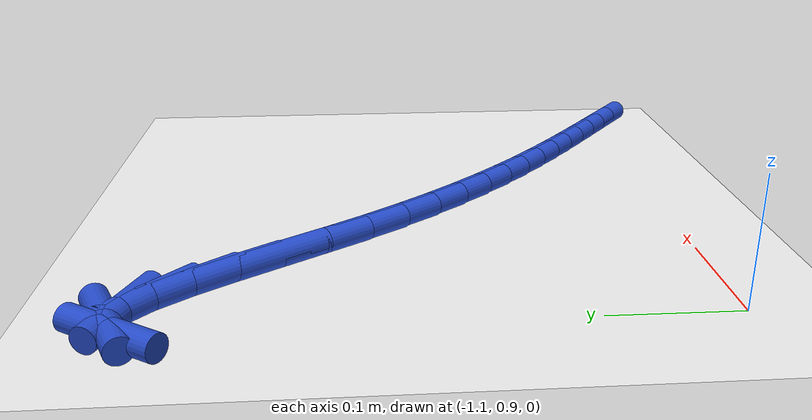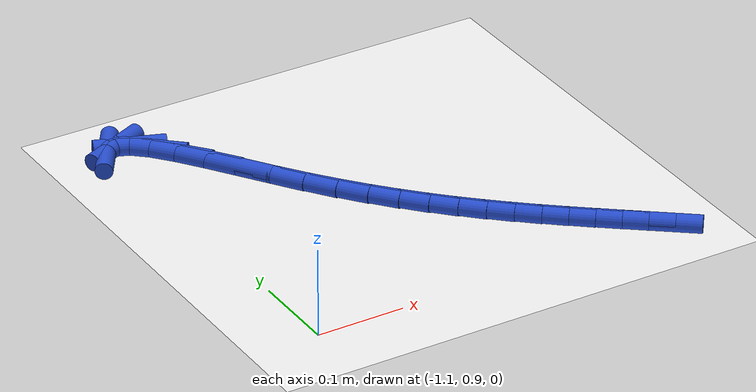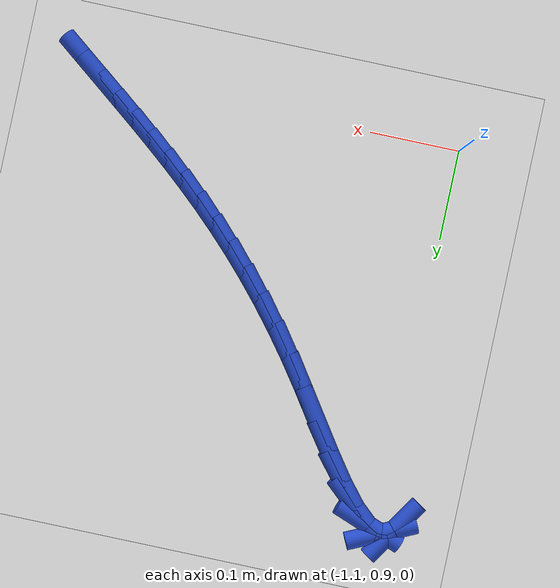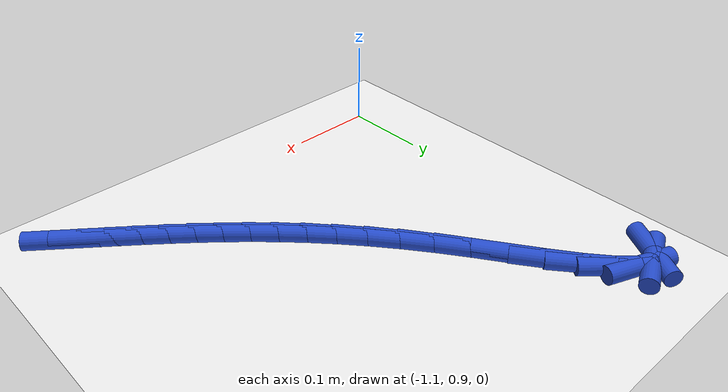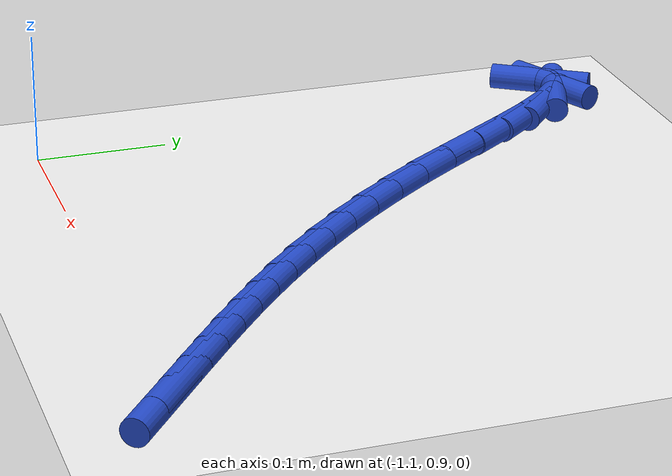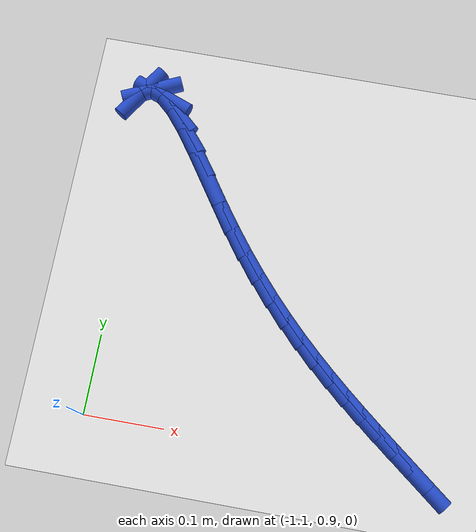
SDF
<sdf version="1.6">
 <world name="default">
  <model name="ground_plane">
   <static>1</static>
   <link name="link">
    <collision name="collision">
     <geometry><plane><normal>0 0 1</normal><size>100 100</size></plane></geometry>
     <surface><friction><ode><mu>100</mu><mu2>50</mu2></ode></friction></surface>
    </collision>
    <visual name="visual">
     <cast_shadows>0</cast_shadows>
     <geometry><plane><normal>0 0 1</normal><size>100 100</size></plane></geometry>
     <material>
      <script><uri>file://media/materials/scripts/gazebo.material</uri><name>Gazebo/WhiteGlow</name></script>
     </material>
    </visual>
   </link>
  </model>
  <model name="line">
   <link name="link_39">
    <pose>-0.6837948518364323 0.8922394192829913 0.01 0 1.57 -0.6608908706929832</pose>
    <collision name="collision">
     <geometry><cylinder><radius>0.01</radius><length>0.08</length></cylinder></geometry>
    </collision>
    <visual name="visual">
     <material>
      <script><name>Gazebo/Blue</name><uri>file://media/materials/scripts/gazebo.material</uri></script>
     </material>
     <geometry><cylinder><radius>0.01</radius><length>0.08</length></cylinder></geometry>
    </visual>
   </link>
   <link name="link_40">
    <pose>-0.7062137398512681 0.9096708530028464 0.01 0 1.57 -0.6608479817907046</pose>
    <collision name="collision">
     <geometry><cylinder><radius>0.01</radius><length>0.08</length></cylinder></geometry>
    </collision>
    <visual name="visual">
     <material>
      <script><name>Gazebo/Blue</name><uri>file://media/materials/scripts/gazebo.material</uri></script>
     </material>
     <geometry><cylinder><radius>0.01</radius><length>0.08</length></cylinder></geometry>
    </visual>
   </link>
   <link name="link_41">
    <pose>-0.7283552892869082 0.9268851230399509 0.01 0 1.57 -0.6657162424116385</pose>
    <collision name="collision">
     <geometry><cylinder><radius>0.01</radius><length>0.08</length></cylinder></geometry>
    </collision>
    <visual name="visual">
     <material>
      <script><name>Gazebo/Blue</name><uri>file://media/materials/scripts/gazebo.material</uri></script>
     </material>
     <geometry><cylinder><radius>0.01</radius><length>0.08</length></cylinder></geometry>
    </visual>
   </link>
   <link name="link_42">
    <pose>-0.7502576412680043 0.9440851536448641 0.01 0 1.57 -0.675518171484937</pose>
    <collision name="collision">
     <geometry><cylinder><radius>0.01</radius><length>0.08</length></cylinder></geometry>
    </collision>
    <visual name="visual">
     <material>
      <script><name>Gazebo/Blue</name><uri>file://media/materials/scripts/gazebo.material</uri></script>
     </material>
     <geometry><cylinder><radius>0.01</radius><length>0.08</length></cylinder></geometry>
    </visual>
   </link>
   <link name="link_43">
    <pose>-0.7719589369192088 0.9614738690681471 0.01 0 1.57 -0.690108288395644</pose>
    <collision name="collision">
     <geometry><cylinder><radius>0.01</radius><length>0.08</length></cylinder></geometry>
    </collision>
    <visual name="visual">
     <material>
      <script><name>Gazebo/Blue</name><uri>file://media/materials/scripts/gazebo.material</uri></script>
     </material>
     <geometry><cylinder><radius>0.01</radius><length>0.08</length></cylinder></geometry>
    </visual>
   </link>
   <link name="link_44">
    <pose>-0.793497317365173 0.9792541935603594 0.01 0 1.57 -0.7091735315733255</pose>
    <collision name="collision">
     <geometry><cylinder><radius>0.01</radius><length>0.08</length></cylinder></geometry>
    </collision>
    <visual name="visual">
     <material>
      <script><name>Gazebo/Blue</name><uri>file://media/materials/scripts/gazebo.material</uri></script>
     </material>
     <geometry><cylinder><radius>0.01</radius><length>0.08</length></cylinder></geometry>
    </visual>
   </link>
   <link name="link_45">
    <pose>-0.8149109237305493 0.9976290513720613 0.01 0 1.57 -0.7322459075564292</pose>
    <collision name="collision">
     <geometry><cylinder><radius>0.01</radius><length>0.08</length></cylinder></geometry>
    </collision>
    <visual name="visual">
     <material>
      <script><name>Gazebo/Blue</name><uri>file://media/materials/scripts/gazebo.material</uri></script>
     </material>
     <geometry><cylinder><radius>0.01</radius><length>0.08</length></cylinder></geometry>
    </visual>
   </link>
   <link name="link_46">
    <pose>-0.8362378971399903 1.0168013667538136 0.01 0 1.57 -0.7587276992665093</pose>
    <collision name="collision">
     <geometry><cylinder><radius>0.01</radius><length>0.08</length></cylinder></geometry>
    </collision>
    <visual name="visual">
     <material>
      <script><name>Gazebo/Blue</name><uri>file://media/materials/scripts/gazebo.material</uri></script>
     </material>
     <geometry><cylinder><radius>0.01</radius><length>0.08</length></cylinder></geometry>
    </visual>
   </link>
   <link name="link_47">
    <pose>-0.8575163787181472 1.0369740639561762 0.01 0 1.57 -0.787927753318429</pose>
    <collision name="collision">
     <geometry><cylinder><radius>0.01</radius><length>0.08</length></cylinder></geometry>
    </collision>
    <visual name="visual">
     <material>
      <script><name>Gazebo/Blue</name><uri>file://media/materials/scripts/gazebo.material</uri></script>
     </material>
     <geometry><cylinder><radius>0.01</radius><length>0.08</length></cylinder></geometry>
    </visual>
   </link>
   <link name="link_48">
    <pose>-0.8787845095896724 1.0583500672297093 0.01 0 1.57 -0.8191053220693056</pose>
    <collision name="collision">
     <geometry><cylinder><radius>0.01</radius><length>0.08</length></cylinder></geometry>
    </collision>
    <visual name="visual">
     <material>
      <script><name>Gazebo/Blue</name><uri>file://media/materials/scripts/gazebo.material</uri></script>
     </material>
     <geometry><cylinder><radius>0.01</radius><length>0.08</length></cylinder></geometry>
    </visual>
   </link>
   <link name="link_49">
    <pose>-0.9000804308792181 1.0811323008249736 0.01 0 1.57 -0.8515163079065063</pose>
    <collision name="collision">
     <geometry><cylinder><radius>0.01</radius><length>0.08</length></cylinder></geometry>
    </collision>
    <visual name="visual">
     <material>
      <script><name>Gazebo/Blue</name><uri>file://media/materials/scripts/gazebo.material</uri></script>
     </material>
     <geometry><cylinder><radius>0.01</radius><length>0.08</length></cylinder></geometry>
    </visual>
   </link>
   <link name="link_50">
    <pose>-0.9214422837114359 1.1055236889925286 0.01 0 1.57 -0.8844561837108461</pose>
    <collision name="collision">
     <geometry><cylinder><radius>0.01</radius><length>0.08</length></cylinder></geometry>
    </collision>
    <visual name="visual">
     <material>
      <script><name>Gazebo/Blue</name><uri>file://media/materials/scripts/gazebo.material</uri></script>
     </material>
     <geometry><cylinder><radius>0.01</radius><length>0.08</length></cylinder></geometry>
    </visual>
   </link>
   <link name="link_51">
    <pose>-0.9429082092109784 1.1317271559829356 0.01 0 1.57 -0.9172946285322058</pose>
    <collision name="collision">
     <geometry><cylinder><radius>0.01</radius><length>0.08</length></cylinder></geometry>
    </collision>
    <visual name="visual">
     <material>
      <script><name>Gazebo/Blue</name><uri>file://media/materials/scripts/gazebo.material</uri></script>
     </material>
     <geometry><cylinder><radius>0.01</radius><length>0.08</length></cylinder></geometry>
    </visual>
   </link>
   <link name="link_52">
    <pose>-0.9645163485024972 1.159945626046754 0.01 0 1.57 -0.9494392291946072</pose>
    <collision name="collision">
     <geometry><cylinder><radius>0.01</radius><length>0.08</length></cylinder></geometry>
    </collision>
    <visual name="visual">
     <material>
      <script><name>Gazebo/Blue</name><uri>file://media/materials/scripts/gazebo.material</uri></script>
     </material>
     <geometry><cylinder><radius>0.01</radius><length>0.08</length></cylinder></geometry>
    </visual>
   </link>
   <link name="link_53">
    <pose>-0.9863037821084302 1.1903767128958613 0.01 0 1.57 -0.9726581120592046</pose>
    <collision name="collision">
     <geometry><cylinder><radius>0.01</radius><length>0.08</length></cylinder></geometry>
    </collision>
    <visual name="visual">
     <material>
      <script><name>Gazebo/Blue</name><uri>file://media/materials/scripts/gazebo.material</uri></script>
     </material>
     <geometry><cylinder><radius>0.01</radius><length>0.08</length></cylinder></geometry>
    </visual>
   </link>
   <link name="link_54">
    <pose>-1.0081523176206042 1.22244056354093 0.01 0 1.57 -0.9728607349225045</pose>
    <collision name="collision">
     <geometry><cylinder><radius>0.01</radius><length>0.08</length></cylinder></geometry>
    </collision>
    <visual name="visual">
     <material>
      <script><name>Gazebo/Blue</name><uri>file://media/materials/scripts/gazebo.material</uri></script>
     </material>
     <geometry><cylinder><radius>0.01</radius><length>0.08</length></cylinder></geometry>
    </visual>
   </link>
   <link name="link_55">
    <pose>-1.0296264994319848 1.2539687572258116 0.01 0 1.57 -0.9464987159668877</pose>
    <collision name="collision">
     <geometry><cylinder><radius>0.01</radius><length>0.08</length></cylinder></geometry>
    </collision>
    <visual name="visual">
     <material>
      <script><name>Gazebo/Blue</name><uri>file://media/materials/scripts/gazebo.material</uri></script>
     </material>
     <geometry><cylinder><radius>0.01</radius><length>0.08</length></cylinder></geometry>
    </visual>
   </link>
   <link name="link_56">
    <pose>-1.0502521292638136 1.2825988848599883 0.01 0 1.57 -0.8804130898124927</pose>
    <collision name="collision">
     <geometry><cylinder><radius>0.01</radius><length>0.08</length></cylinder></geometry>
    </collision>
    <visual name="visual">
     <material>
      <script><name>Gazebo/Blue</name><uri>file://media/materials/scripts/gazebo.material</uri></script>
     </material>
     <geometry><cylinder><radius>0.01</radius><length>0.08</length></cylinder></geometry>
    </visual>
   </link>
   <link name="link_57">
    <pose>-1.0695550088373322 1.3059685373529442 0.01 0 1.57 -0.7325445775962433</pose>
    <collision name="collision">
     <geometry><cylinder><radius>0.01</radius><length>0.08</length></cylinder></geometry>
    </collision>
    <visual name="visual">
     <material>
      <script><name>Gazebo/Blue</name><uri>file://media/materials/scripts/gazebo.material</uri></script>
     </material>
     <geometry><cylinder><radius>0.01</radius><length>0.08</length></cylinder></geometry>
    </visual>
   </link>
   <link name="link_58">
    <pose>-1.0870609398737816 1.3217153056141613 0.01 0 1.57 -0.36155479168169574</pose>
    <collision name="collision">
     <geometry><cylinder><radius>0.01</radius><length>0.08</length></cylinder></geometry>
    </collision>
    <visual name="visual">
     <material>
      <script><name>Gazebo/Blue</name><uri>file://media/materials/scripts/gazebo.material</uri></script>
     </material>
     <geometry><cylinder><radius>0.01</radius><length>0.08</length></cylinder></geometry>
    </visual>
   </link>
   <link name="link_59">
    <pose>-1.1022957240944031 1.327476780553123 0.01 0 1.57 0.43754772666090874</pose>
    <collision name="collision">
     <geometry><cylinder><radius>0.01</radius><length>0.08</length></cylinder></geometry>
    </collision>
    <visual name="visual">
     <material>
      <script><name>Gazebo/Blue</name><uri>file://media/materials/scripts/gazebo.material</uri></script>
     </material>
     <geometry><cylinder><radius>0.01</radius><length>0.08</length></cylinder></geometry>
    </visual>
   </link>
   <link name="link_60">
    <pose>-1.1149598095194417 1.3215526708953877 0.01 0 1.57 0.9961798162274388</pose>
    <collision name="collision">
     <geometry><cylinder><radius>0.01</radius><length>0.08</length></cylinder></geometry>
    </collision>
    <visual name="visual">
     <material>
      <script><name>Gazebo/Blue</name><uri>file://media/materials/scripts/gazebo.material</uri></script>
     </material>
     <geometry><cylinder><radius>0.01</radius><length>0.08</length></cylinder></geometry>
    </visual>
   </link>
  </model>
 </world>
</sdf>
